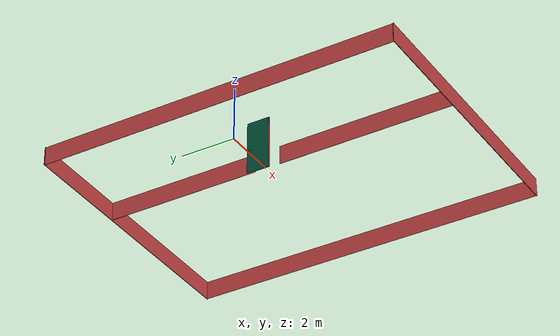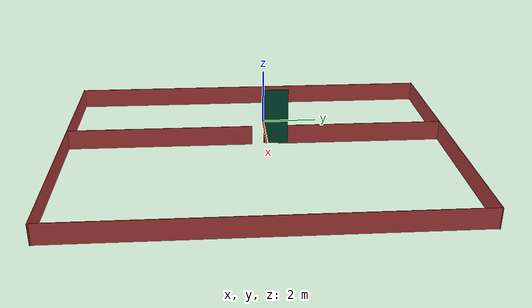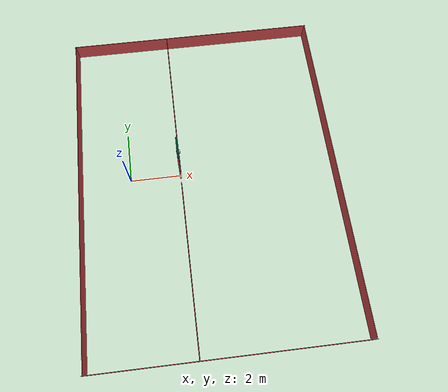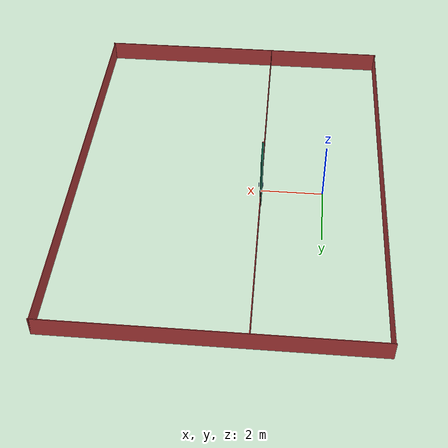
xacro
<?xml version="1.0"?>

<robot name="hsrb_lab" xmlns:xacro="http://ros.org/wiki/xacro">

    <xacro:include filename="$(find suturo_urdf_publisher)/urdf/hsr_movable_door.urdf.xacro"/>
    <xacro:property name="pi" value="3.1415926535897931" />
    <xacro:property name="half_pi" value="1.570796327" />
    <xacro:property name="simulated" value="true" />

    <xacro:property name="data"
    value="${load_yaml('$(find suturo_urdf_publisher)/urdf/yaml/sim_doors_test.yaml')}" />

    <xacro:property name="movable_door_x"
        value="${data['movable_door']['x_pos']}" />
    <xacro:property name="movable_door_y"
        value="${data['movable_door']['y_pos']}" />
    <xacro:property name="movable_door_z_rot"
        value="${data['movable_door']['z_rot']}" />
    <xacro:property name="movable_door_depth"
        value="${data['movable_door']['depth']}" />
    <xacro:property name="movable_door_width"
        value="${data['movable_door']['width']}" />
    <xacro:property name="movable_door_height"
        value="${data['movable_door']['height']}" />

    <xacro:if value="${simulated}">
        <link name="world"/>
        <joint name="world_room_joint" type="fixed">
            <origin xyz="0.0 0.0 0 " rpy="0 0 0" />
            <parent link="world"/>
            <child link="room_link"/>
        </joint>
    </xacro:if>

    <link name="room_link" />
    <link name="hsr_lab_wall_1">
      <sphere_inertia radius="0" mass="0"/>
      <visual>
	<material name="hinge_red"/>
        <origin xyz="0 0 0.35" rpy="0 0 0" />
        <geometry>
            <box size="10.08 0.02 0.7" />
        </geometry>
      </visual>
      <collision>
        <origin xyz="0 0 0.35" rpy="0 0 0" />
        <geometry>
            <box size="10.08 0.02 0.7" />
        </geometry>
      </collision>
    </link>

    <link name="hsr_lab_wall_2">
      <sphere_inertia radius="0" mass="0"/>
      <visual>
	<material name="hinge_red"/>
        <origin xyz="0 0 0.35" rpy="0 0 0" />
        <geometry>
            <box size="10.08 0.02 0.7" />
        </geometry>
     </visual>
      <collision>
        <origin xyz="0 0 0.35" rpy="0 0 0" />
        <geometry>
            <box size="10.08 0.02 0.7" />
        </geometry>
      </collision>
    </link>

    <link name="hsr_lab_wall_3">
      <sphere_inertia radius="0" mass="0"/>
      <visual>
	<material name="hinge_red"/>
        <origin xyz="0 0 0.35" rpy="0 0 0" />
        <geometry>
            <box size="13.18 0.02 0.7" />
        </geometry>
     </visual>
      <collision>
        <origin xyz="0 0 0.35" rpy="0 0 0" />
        <geometry>
            <box size="13.18 0.02 0.7" />
        </geometry>
      </collision>
    </link>

    <link name="hsr_lab_wall_4">
      <sphere_inertia radius="0" mass="0"/>
      <visual>
	<material name="hinge_red"/>
        <origin xyz="0 0 0.35" rpy="0 0 0" />
        <geometry>
            <box size="13.18 0.02 0.7" />
        </geometry>
     </visual>
      <collision>
        <origin xyz="0 0 0.35" rpy="0 0 0" />
        <geometry>
            <box size="13.18 0.02 0.7" />
        </geometry>
      </collision>
    </link>

    <link name="hsr_lab_wall_5">
      <sphere_inertia radius="0" mass="0"/>
      <visual>
	<material name="hinge_red"/>
        <origin xyz="0 0 0.35" rpy="0 0 0" />
        <geometry>
            <box size="5.78 0.02 0.7" />
        </geometry>
     </visual>
      <collision>
        <origin xyz="0 0 0.35" rpy="0 0 0" />
        <geometry>
            <box size="5.78 0.02 0.7" />
        </geometry>
      </collision>
    </link>
    <link name="hsr_lab_wall_6">
      <sphere_inertia radius="0" mass="0"/>
      <visual>
	<material name="hinge_red"/>
        <origin xyz="0 0 0.35" rpy="0 0 0" />
        <geometry>
            <box size="6.45 0.02 0.7" />
        </geometry>
     </visual>
      <collision>
        <origin xyz="0 0 0.35" rpy="0 0 0" />
        <geometry>
            <box size="6.45 0.02 0.7" />
        </geometry>
      </collision>
    </link>

    <!-- JOINTS -->

    <link name="kitchen_walls"/>

    <joint name="walls_main_joint" type="fixed">
      <origin xyz="0 0 0" rpy="0 0 0" />
      <parent link="room_link"/>
      <child link="kitchen_walls"/>
    </joint>

    <joint name="wall_1_joint" type="fixed">
      <origin xyz="3.08 -7 0" rpy="0 -0 0" />
      <parent link="kitchen_walls"/>
      <child link="hsr_lab_wall_1"/>
    </joint>

    <joint name="wall_2_joint" type="fixed">
        <origin xyz="3.08 6.2 0" rpy="0 -0 0" />
      <parent link="kitchen_walls"/>
      <child link="hsr_lab_wall_2"/>
    </joint>

    <joint name="wall_3_joint" type="fixed">
        <origin xyz="8.08 -0.38 0" rpy="0 -0 1.5707963" />
      <parent link="kitchen_walls"/>
      <child link="hsr_lab_wall_3"/>
    </joint>

    <joint name="wall_4_joint" type="fixed">
        <origin xyz="-1.92 -0.38 0" rpy="0 -0 1.5707963" />
      <parent link="kitchen_walls"/>
      <child link="hsr_lab_wall_4"/>
    </joint>

    <joint name="wall_5_joint" type="fixed">
        <origin xyz="2 3.3 0" rpy="0 -0 1.57" />
      <parent link="kitchen_walls"/>
      <child link="hsr_lab_wall_5"/>
    </joint>

    <joint name="wall_6_joint" type="fixed">
        <origin xyz="2 -3.765 0" rpy="0 -0 1.57" />
      <parent link="kitchen_walls"/>
      <child link="hsr_lab_wall_6"/>
    </joint>

    <suturo_movable_door name="door_1" parent="room_link" height="2" width="0.83" depth="0.055" x="1.995590" y="-0.099165" z="1.045" r="0" p="0" yr="${half_pi}" door_lower="${-half_pi}" door_max="${half_pi}" >
    </suturo_movable_door>

</robot>

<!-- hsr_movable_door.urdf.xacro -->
<robot name="suturo_movable_door" xmlns:xacro="http://ros.org/wiki/xacro">

  <material name="door_green">
    <color rgba="0 0.31 0.22 1"/>
  </material>

  <material name="hinge_red">
    <color rgba="0.74 0.25 0.25 1"/>
  </material>

  <material name="handle_blue">
    <color rgba="0.3 0.5 0.78 1"/>
  </material>
  <xacro:property name="pi" value="3.1415926535897931" />
  <xacro:property name="half_pi" value="1.570796327" />

  <macro name="suturo_movable_door" params="name parent height width depth x y z r p yr door_lower door_max">
    <!-- LINKS -->

    <link name="${name}_center">
      <visual>
        <material name="door_green"/>
        <origin xyz="${width/2} 0 0" rpy="0 0 0" />
        <geometry>
          <box size="${width} ${depth} ${height}" />
        </geometry>
      </visual>
      <collision>
        <origin xyz="${width/2} 0 0" rpy="0 0 0" />
        <geometry>
          <box size="${width} ${depth} ${height}" />
        </geometry>
      </collision>
    </link>

    <link name="${name}_hinge">
      <visual>
        <material name="hinge_red"/>
        <origin xyz="0 0 0" rpy="0 0 0" />
        <geometry>
          <box size="0.05 0.05 ${height}" />
        </geometry>
      </visual>
      <collision>
        <origin xyz="0 0 0" rpy="0 0 0" />
        <geometry>-
          <box size="0.05 0.05 ${height}" />
        </geometry>
      </collision>
    </link>

    <link name="${name}_handle_outside">

      <sphere_inertia radius="0" mass="0"/>
      <visual>
	<material name="handle_blue"/>
        <origin xyz="0 0 0" rpy="${half_pi} 0 ${pi}" />
        <geometry>
          <box size="0.15 0.025 0.015" />
        </geometry>
      </visual>
      <collision>
        <origin xyz="0 0 0" rpy="${half_pi} 0 ${pi}" />
        <geometry>
          <box size="0.15 0.025 0.015" />
        </geometry>
      </collision>
    </link>

    <link name="${name}_handle_inside">

      <sphere_inertia radius="0" mass="0"/>
      <visual>
	<material name="handle_blue"/>
        <origin xyz="0 0 0" rpy="${half_pi} 0 ${pi}" />
        <geometry>-
          <box size="0.15 0.025 0.015" />
        </geometry>
      </visual>
      <collision>
        <origin xyz="0 0 0" rpy="${half_pi} 0 ${pi}" />
        <geometry>
          <box size="0.15 0.025 0.015" />
        </geometry>
      </collision>
    </link>

    <!-- JOINTS -->

    <joint name="${name}_origin_revolute_joint" type="revolute">
      <axis xyz="0 0 1"/>
      <limit effort="100" lower="${door_lower}" upper="${door_max}" velocity="10"/>
      <origin xyz="0 0 0" rpy="0 0 ${yr}" />
      <parent link="${name}_hinge"/>
      <child link="${name}_center"/>
    </joint>

    <joint name="${name}_hinge_joint" type="fixed">
      <axis xyz="0 0 0"/>
      <limit effort="1" lower="0" upper="1.5708" velocity="1"/>
      <origin xyz="${x} ${y} ${z}" rpy="0 0 0" />
      <parent link="${parent}"/>
      <child link="${name}_hinge"/>
    </joint>

    <joint name="${name}_handle_inside_joint" type="fixed">
      <axis xyz="0 0 0"/>
      <limit effort="1" lower="0" upper="1.5708" velocity="1"/>
      <origin xyz="${0.9 * width} ${-1.25 * depth} -0.13" rpy="0 0 0" />
      <parent link="${name}_center"/>
      <child link="${name}_handle_inside"/>
    </joint>

    <joint name="${name}_handle_outside_joint" type="fixed">
      <axis xyz="0 0 0"/>
      <limit effort="1" lower="0" upper="1.5708" velocity="1"/>
      <origin xyz="${0.9 * width} ${depth} -0.13" rpy="0 0 0" />
      <parent link="${name}_center"/>
      <child link="${name}_handle_outside"/>
    </joint>

  </macro>
</robot>
